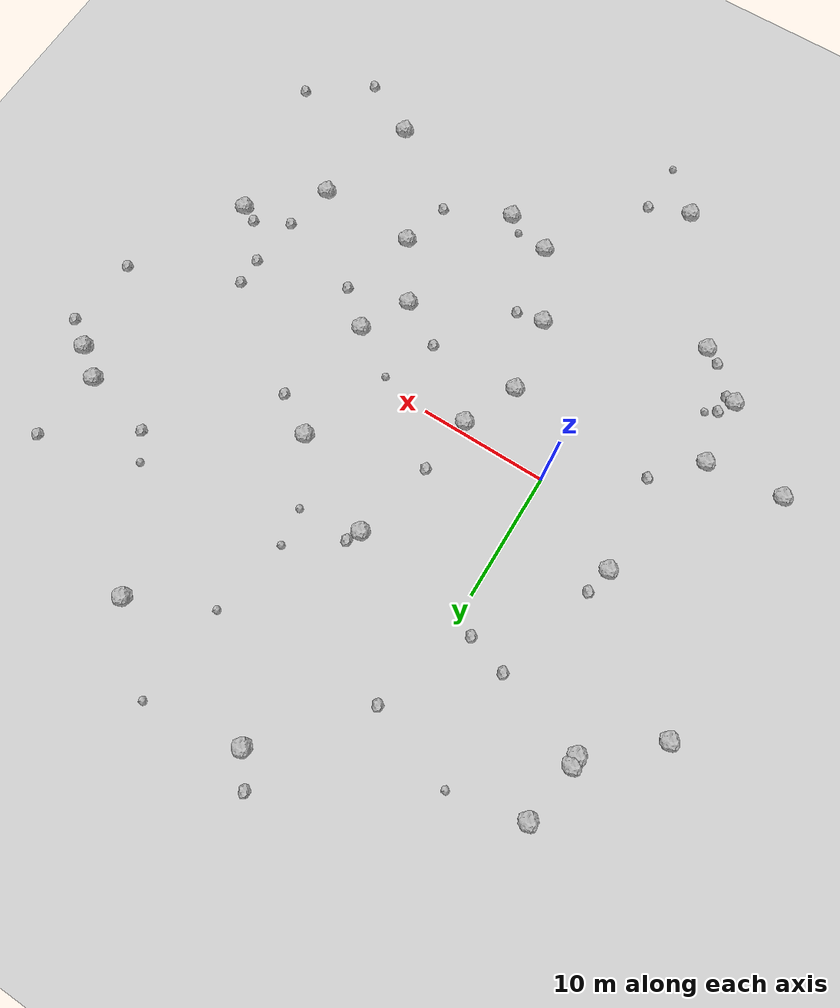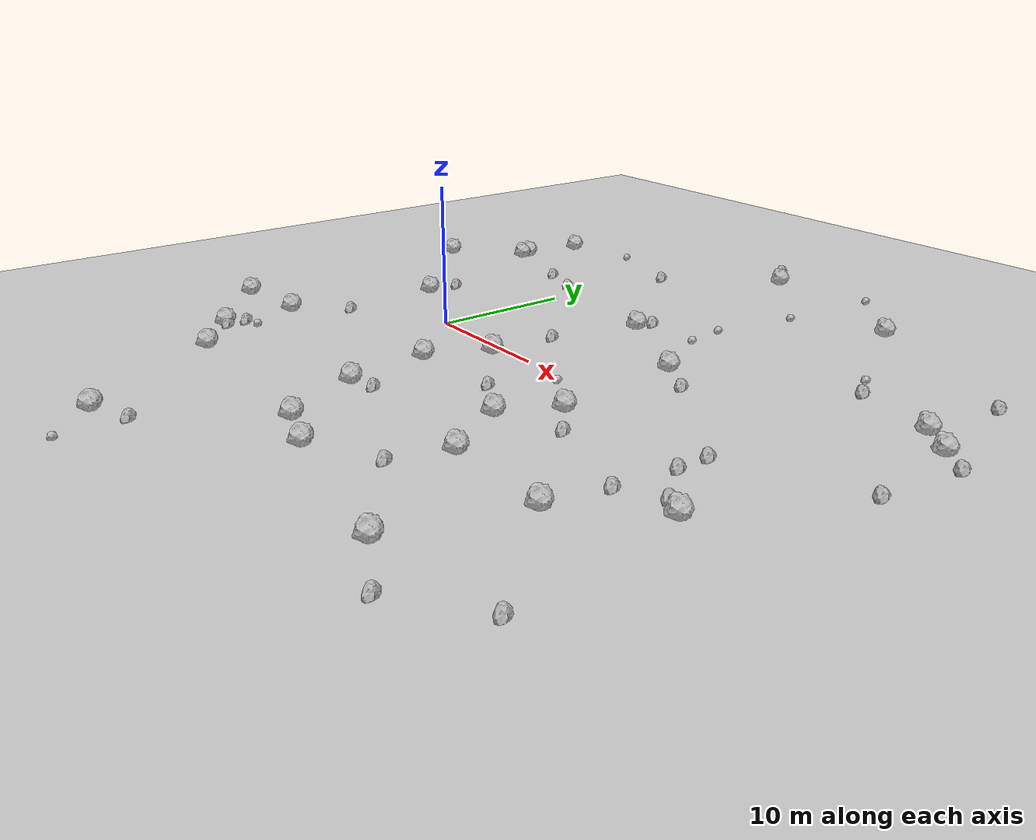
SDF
<sdf version="1.6">
 <world name="default">
  <include><uri>model://custom_ground</uri></include>
  <include><uri>model://sun</uri></include>
  <model name="rock1_0_0">
   <include><uri>model://rock1</uri><pose>-10.787216621184392 20.742451768815563 0.5 0 0 0</pose></include>
  </model>
  <model name="rock1_0_1">
   <include><uri>model://rock1</uri><pose>17.773516983565024 -3.1022882227077204 0.5 0 0 0</pose></include>
  </model>
  <model name="rock1_0_2">
   <include><uri>model://rock1</uri><pose>7.052120465616866 -0.7974193689070397 0.5 0 0 0</pose></include>
  </model>
  <model name="rock1_0_3">
   <include><uri>model://rock1</uri><pose>15.774861016928256 -6.823753588254192 0.5 0 0 0</pose></include>
  </model>
  <model name="rock1_0_4">
   <include><uri>model://rock1</uri><pose>18.753301491735193 -11.386082869724369 0.5 0 0 0</pose></include>
  </model>
  <model name="rock1_0_5">
   <include><uri>model://rock1</uri><pose>-11.53480914216236 15.44611403203146 0.5 0 0 0</pose></include>
  </model>
  <model name="rock1_0_6">
   <include><uri>model://rock1</uri><pose>12.764813548357516 -17.648452320951414 0.5 0 0 0</pose></include>
  </model>
  <model name="rock1_0_7">
   <include><uri>model://rock1</uri><pose>5.174267037431065 -5.081899053028625 0.5 0 0 0</pose></include>
  </model>
  <model name="rock1_0_8">
   <include><uri>model://rock1</uri><pose>-15.597690982251056 -8.144179071095856 0.5 0 0 0</pose></include>
  </model>
  <model name="rock1_0_9">
   <include><uri>model://rock1</uri><pose>34.96139587940527 9.4615547412226 0.5 0 0 0</pose></include>
  </model>
  <model name="rock1_0_10">
   <include><uri>model://rock1</uri><pose>-9.65522275927035 -7.52901779432932 0.5 0 0 0</pose></include>
  </model>
  <model name="rock1_0_11">
   <include><uri>model://rock1</uri><pose>0.6966920173902764 -25.375041705206097 0.5 0 0 0</pose></include>
  </model>
  <model name="rock1_0_12">
   <include><uri>model://rock1</uri><pose>24.266727354586315 -19.816670309820537 0.5 0 0 0</pose></include>
  </model>
  <model name="rock1_0_13">
   <include><uri>model://rock1</uri><pose>9.157453294103007 10.32348848844299 0.5 0 0 0</pose></include>
  </model>
  <model name="rock1_0_14">
   <include><uri>model://rock1</uri><pose>32.74282625543621 11.145965077817031 0.5 0 0 0</pose></include>
  </model>
  <model name="rock1_0_15">
   <include><uri>model://rock1</uri><pose>6.105239651157394 -10.991778983307494 0.5 0 0 0</pose></include>
  </model>
  <model name="rock1_0_16">
   <include><uri>model://rock1</uri><pose>-7.363041002742621 3.2712264499269637 0.5 0 0 0</pose></include>
  </model>
  <model name="rock1_0_17">
   <include><uri>model://rock1</uri><pose>-5.680398838158251 -15.668285545989173 0.5 0 0 0</pose></include>
  </model>
  <model name="rock1_0_18">
   <include><uri>model://rock1</uri><pose>16.654449867440967 6.373254395396316 0.5 0 0 0</pose></include>
  </model>
  <model name="rock1_0_19">
   <include><uri>model://rock1</uri><pose>7.931551689294164 26.97969845979408 0.5 0 0 0</pose></include>
  </model>
  <model name="rock1_0_20">
   <include><uri>model://rock1</uri><pose>9.059435970498313 -16.446367520944086 0.5 0 0 0</pose></include>
  </model>
  <model name="rock1_0_21">
   <include><uri>model://rock1</uri><pose>-16.373481106741846 11.298227344750885 0.5 0 0 0</pose></include>
  </model>
  <model name="rock1_0_22">
   <include><uri>model://rock1</uri><pose>-11.541426461403024 16.147185656220103 0.5 0 0 0</pose></include>
  </model>
  <model name="rock1_0_23">
   <include><uri>model://rock1</uri><pose>-9.379874701597476 -12.82175690078898 0.5 0 0 0</pose></include>
  </model>
  <model name="rock1_0_24">
   <include><uri>model://rock1</uri><pose>20.919913657929577 23.179571448445188 0.5 0 0 0</pose></include>
  </model>
  <model name="rock1_0_25">
   <include><uri>model://rock1</uri><pose>26.568037527884137 -11.654806092524005 0.5 0 0 0</pose></include>
  </model>
  <model name="rock1_0_26">
   <include><uri>model://rock1</uri><pose>31.413187612006112 -6.939950823694854 0.5 0 0 0</pose></include>
  </model>
  <model name="rock2_0_0">
   <include><uri>model://rock2</uri><pose>9.668693333723862 11.40060715594717 0.3 0 0 0</pose></include>
  </model>
  <model name="rock2_0_1">
   <include><uri>model://rock2</uri><pose>27.159314011607734 12.578301077985735 0.3 0 0 0</pose></include>
  </model>
  <model name="rock2_0_2">
   <include><uri>model://rock2</uri><pose>27.84852420731943 -1.340391212732147 0.3 0 0 0</pose></include>
  </model>
  <model name="rock2_0_3">
   <include><uri>model://rock2</uri><pose>36.22655513575341 2.2666714369004524 0.3 0 0 0</pose></include>
  </model>
  <model name="rock2_0_4">
   <include><uri>model://rock2</uri><pose>-6.903584237164731 5.39765688792842 0.3 0 0 0</pose></include>
  </model>
  <model name="rock2_0_5">
   <include><uri>model://rock2</uri><pose>-6.584268285035606 -4.207969736555832 0.3 0 0 0</pose></include>
  </model>
  <model name="rock2_0_6">
   <include><uri>model://rock2</uri><pose>33.57250246310452 16.915395784978095 0.3 0 0 0</pose></include>
  </model>
  <model name="rock2_0_7">
   <include><uri>model://rock2</uri><pose>33.337886352015424 -18.658791927806615 0.3 0 0 0</pose></include>
  </model>
  <model name="rock2_0_8">
   <include><uri>model://rock2</uri><pose>30.089973053881877 -6.296338883076359 0.3 0 0 0</pose></include>
  </model>
  <model name="rock2_0_9">
   <include><uri>model://rock2</uri><pose>19.73460806947468 4.5283399872226155 0.3 0 0 0</pose></include>
  </model>
  <model name="rock2_0_10">
   <include><uri>model://rock2</uri><pose>-8.670212981875018 -11.574181208132359 0.3 0 0 0</pose></include>
  </model>
  <model name="rock2_0_11">
   <include><uri>model://rock2</uri><pose>36.944581554240195 8.052714482015972 0.3 0 0 0</pose></include>
  </model>
  <model name="rock2_0_12">
   <include><uri>model://rock2</uri><pose>8.195704445847493 -10.592116799790865 0.3 0 0 0</pose></include>
  </model>
  <model name="rock2_0_13">
   <include><uri>model://rock2</uri><pose>20.47836093863323 -5.382069583904936 0.3 0 0 0</pose></include>
  </model>
  <model name="rock2_0_14">
   <include><uri>model://rock2</uri><pose>1.608997385395 19.83115675015256 0.3 0 0 0</pose></include>
  </model>
  <model name="rock2_0_15">
   <include><uri>model://rock2</uri><pose>3.842878275358906 -24.175397774039023 0.3 0 0 0</pose></include>
  </model>
  <model name="rock2_0_16">
   <include><uri>model://rock2</uri><pose>7.613002137825319 3.843109109259508 0.3 0 0 0</pose></include>
  </model>
  <model name="rock2_0_17">
   <include><uri>model://rock2</uri><pose>28.665464872580387 -22.136369317658183 0.3 0 0 0</pose></include>
  </model>
  <model name="rock2_0_18">
   <include><uri>model://rock2</uri><pose>17.729884195800487 -15.269517970548323 0.3 0 0 0</pose></include>
  </model>
  <model name="rock2_0_19">
   <include><uri>model://rock2</uri><pose>6.202521928972487 29.20148100401653 0.3 0 0 0</pose></include>
  </model>
  <model name="rock2_0_20">
   <include><uri>model://rock2</uri><pose>12.257827080648212 -4.797894201744494 0.3 0 0 0</pose></include>
  </model>
  <model name="rock2_0_21">
   <include><uri>model://rock2</uri><pose>-6.923828431728637 -14.988229434723268 0.3 0 0 0</pose></include>
  </model>
  <model name="rock2_0_22">
   <include><uri>model://rock2</uri><pose>-1.4499324290091238 12.453857963973796 0.3 0 0 0</pose></include>
  </model>
  <model name="rock2_0_23">
   <include><uri>model://rock2</uri><pose>27.402363053405537 -7.693605880738186 0.3 0 0 0</pose></include>
  </model>
  <model name="rock2_0_24">
   <include><uri>model://rock2</uri><pose>-4.586895980087375 13.416432855789473 0.3 0 0 0</pose></include>
  </model>
  <model name="rock2_0_25">
   <include><uri>model://rock2</uri><pose>-8.715095146147432 -12.948926837434048 0.3 0 0 0</pose></include>
  </model>
  <model name="rock2_0_26">
   <include><uri>model://rock2</uri><pose>27.851070451230406 -3.560814594192049 0.3 0 0 0</pose></include>
  </model>
  <model name="rock3_0_0">
   <include><uri>model://rock3</uri><pose>3.7140848664145096 -28.382540763528233 0.2 0 0 0</pose></include>
  </model>
  <model name="rock3_0_1">
   <include><uri>model://rock3</uri><pose>13.984934742949967 -0.7407117506684067 0.2 0 0 0</pose></include>
  </model>
  <model name="rock3_0_2">
   <include><uri>model://rock3</uri><pose>-9.963467262575405 -7.352477760636834 0.2 0 0 0</pose></include>
  </model>
  <model name="rock3_0_3">
   <include><uri>model://rock3</uri><pose>-5.1823103452841774 22.00876448086634 0.2 0 0 0</pose></include>
  </model>
  <model name="rock3_0_4">
   <include><uri>model://rock3</uri><pose>11.512375911962046 -16.674028271699356 0.2 0 0 0</pose></include>
  </model>
  <model name="rock3_0_5">
   <include><uri>model://rock3</uri><pose>-7.865842440525736 -11.092193033693388 0.2 0 0 0</pose></include>
  </model>
  <model name="rock3_0_6">
   <include><uri>model://rock3</uri><pose>14.696054940408033 20.379286102086652 0.2 0 0 0</pose></include>
  </model>
  <model name="rock3_0_7">
   <include><uri>model://rock3</uri><pose>13.447222172233388 14.147816481214981 0.2 0 0 0</pose></include>
  </model>
  <model name="rock3_0_8">
   <include><uri>model://rock3</uri><pose>25.77603033177688 14.586340493674513 0.2 0 0 0</pose></include>
  </model>
  <model name="rock3_0_9">
   <include><uri>model://rock3</uri><pose>13.811156171750916 11.223729104298712 0.2 0 0 0</pose></include>
  </model>
  <model name="rock3_0_10">
   <include><uri>model://rock3</uri><pose>15.44775985148739 28.119256064037486 0.2 0 0 0</pose></include>
  </model>
 </world>
</sdf>
